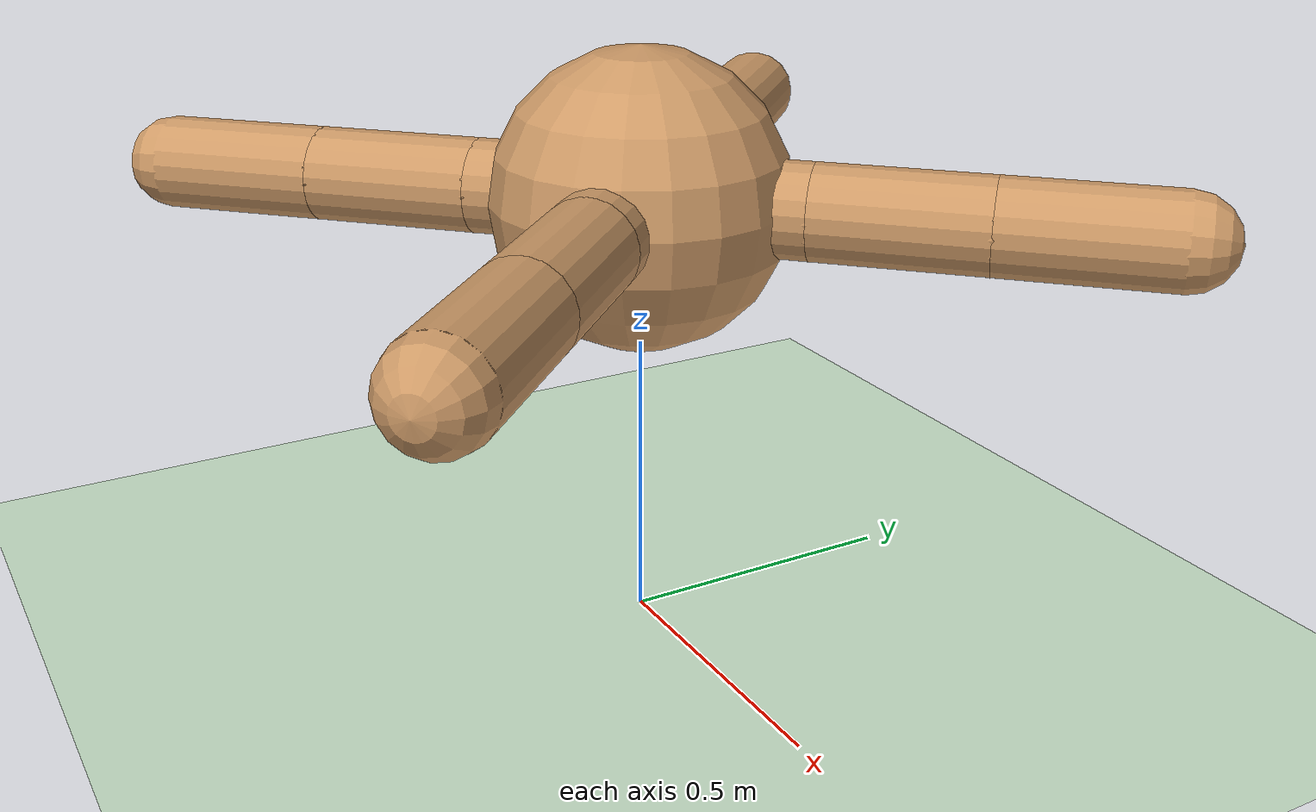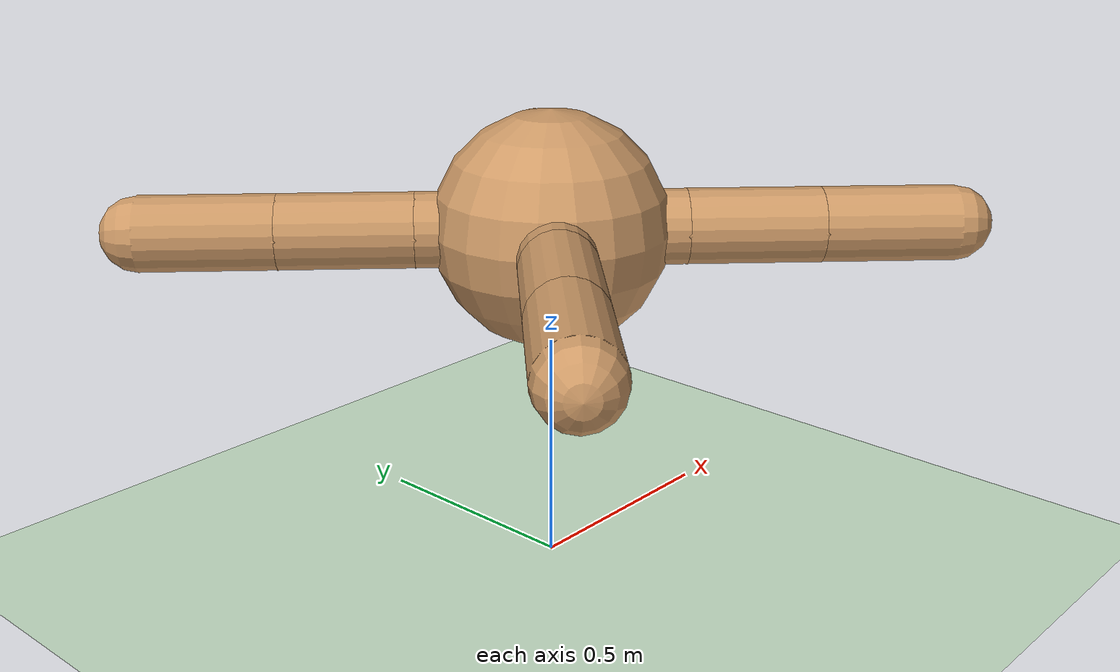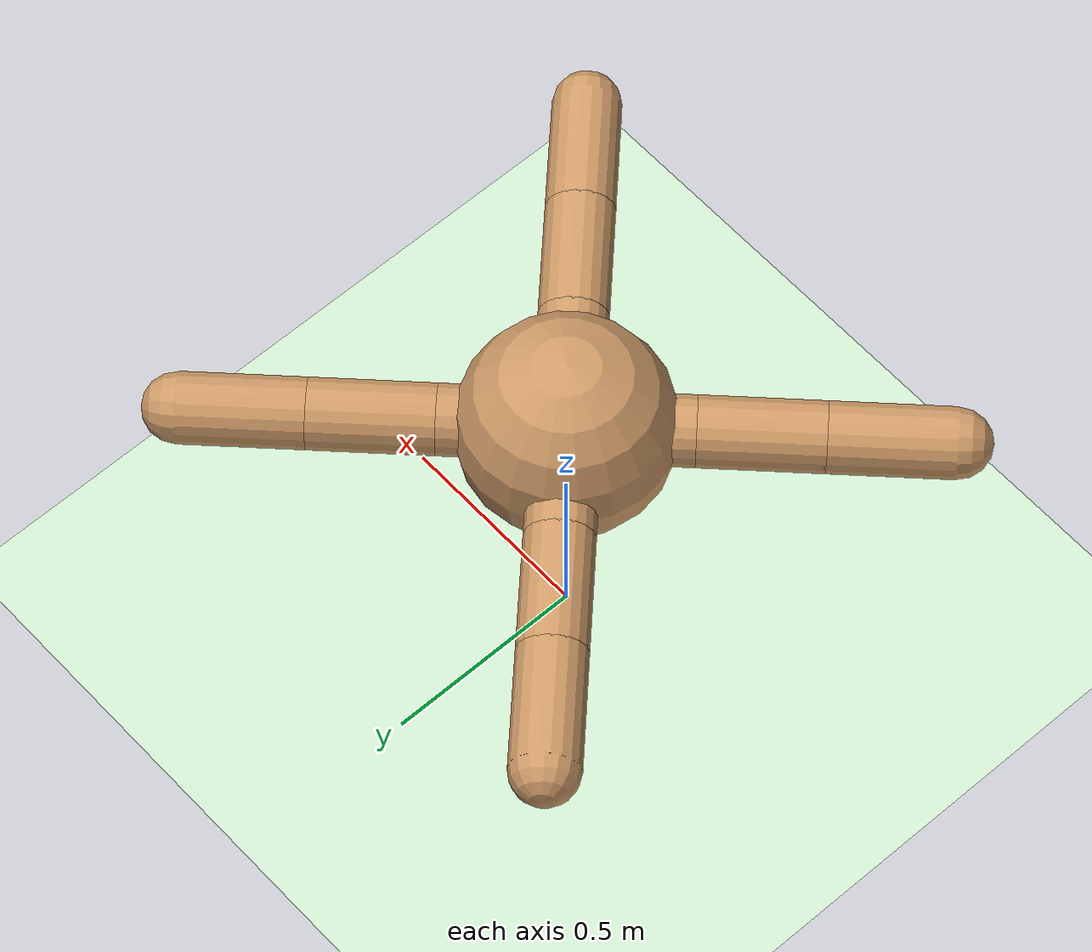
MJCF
<mujoco model="ant">
  <compiler angle="radian" autolimits="true"/>
  <option timestep="0.01" integrator="RK4"/>
  <default class="main">
    <joint limited="true" armature="1" damping="1"/>
    <geom conaffinity="0" friction="1 0.5 0.5" margin="0.01" density="5" rgba="0.8 0.6 0.4 1"/>
  </default>
  <custom>
    <numeric name="init_qpos" size="15" data="0 0 0.55 1 0 0 0 0 1 0 -1 0 -1 0 1"/>
  </custom>
  <asset>
    <texture type="skybox" builtin="gradient" rgb1="1 1 1" rgb2="0 0 0" width="100" height="600"/>
    <texture type="cube" name="texgeom" builtin="flat" mark="cross" rgb1="0.8 0.6 0.4" rgb2="0.8 0.6 0.4" markrgb="1 1 1" width="127" height="762"/>
    <texture type="2d" name="texplane" builtin="checker" rgb1="0 0 0" rgb2="0.8 0.8 0.8" width="100" height="100"/>
    <material name="MatPlane" texture="texplane" texrepeat="60 60" specular="1" shininess="1" reflectance="0.5"/>
    <material name="geom" texture="texgeom" texuniform="true"/>
  </asset>
  <worldbody>
    <geom name="floor" size="40 40 40" type="plane" conaffinity="1" material="MatPlane" rgba="0.8 0.9 0.8 1"/>
    <light pos="0 0 1.3" dir="0 0 -1" directional="true" cutoff="100" exponent="1" diffuse="1 1 1" specular="0.1 0.1 0.1"/>
    <body name="torso" pos="0 0 0.75" gravcomp="0">
      <joint name="root" limited="false" type="free" margin="0.01" armature="0" damping="0"/>
      <geom name="torso_geom" size="0.25"/>
      <camera name="track" pos="0 -3 0.3" quat="0.707107 0.707107 0 0" mode="trackcom"/>
      <body name="front_left_leg" pos="0 0 0" gravcomp="0">
        <geom name="aux_1_geom" size="0.08 0.141421" pos="0.1 0.1 0" quat="0.707107 0.5 -0.5 0" type="capsule"/>
        <body name="aux_1" pos="0.2 0.2 0" gravcomp="0">
          <joint name="hip_1" pos="0 0 0" axis="0 0 1" range="-0.523599 0.523599"/>
          <geom name="left_leg_geom" size="0.08 0.141421" pos="0.1 0.1 0" quat="0.707107 0.5 -0.5 0" type="capsule"/>
          <body pos="0.2 0.2 0" gravcomp="0">
            <joint name="ankle_1" pos="0 0 0" axis="-0.707107 0.707107 0" range="0.523599 1.22173"/>
            <geom name="left_ankle_geom" size="0.08 0.141421" pos="0.1 0.1 0" quat="0.707107 0.5 -0.5 0" type="capsule"/>
          </body>
        </body>
      </body>
      <body name="front_right_leg" pos="0 0 0" gravcomp="0">
        <geom name="aux_2_geom" size="0.08 0.141421" pos="-0.1 0.1 0" quat="0.707107 0.5 0.5 0" type="capsule"/>
        <body name="aux_2" pos="-0.2 0.2 0" gravcomp="0">
          <joint name="hip_2" pos="0 0 0" axis="0 0 1" range="-0.523599 0.523599"/>
          <geom name="right_leg_geom" size="0.08 0.141421" pos="-0.1 0.1 0" quat="0.707107 0.5 0.5 0" type="capsule"/>
          <body pos="-0.2 0.2 0" gravcomp="0">
            <joint name="ankle_2" pos="0 0 0" axis="0.707107 0.707107 0" range="-1.22173 -0.523599"/>
            <geom name="right_ankle_geom" size="0.08 0.141421" pos="-0.1 0.1 0" quat="0.707107 0.5 0.5 0" type="capsule"/>
          </body>
        </body>
      </body>
      <body name="back_leg" pos="0 0 0" gravcomp="0">
        <geom name="aux_3_geom" size="0.08 0.141421" pos="-0.1 -0.1 0" quat="0.707107 -0.5 0.5 0" type="capsule"/>
        <body name="aux_3" pos="-0.2 -0.2 0" gravcomp="0">
          <joint name="hip_3" pos="0 0 0" axis="0 0 1" range="-0.523599 0.523599"/>
          <geom name="back_leg_geom" size="0.08 0.141421" pos="-0.1 -0.1 0" quat="0.707107 -0.5 0.5 0" type="capsule"/>
          <body pos="-0.2 -0.2 0" gravcomp="0">
            <joint name="ankle_3" pos="0 0 0" axis="-0.707107 0.707107 0" range="-1.22173 -0.523599"/>
            <geom name="third_ankle_geom" size="0.08 0.141421" pos="-0.1 -0.1 0" quat="0.707107 -0.5 0.5 0" type="capsule"/>
          </body>
        </body>
      </body>
      <body name="right_back_leg" pos="0 0 0" gravcomp="0">
        <geom name="aux_4_geom" size="0.08 0.141421" pos="0.1 -0.1 0" quat="0.707107 -0.5 -0.5 0" type="capsule"/>
        <body name="aux_4" pos="0.2 -0.2 0" gravcomp="0">
          <joint name="hip_4" pos="0 0 0" axis="0 0 1" range="-0.523599 0.523599"/>
          <geom name="rightback_leg_geom" size="0.08 0.141421" pos="0.1 -0.1 0" quat="0.707107 -0.5 -0.5 0" type="capsule"/>
          <body pos="0.2 -0.2 0" gravcomp="0">
            <joint name="ankle_4" pos="0 0 0" axis="0.707107 0.707107 0" range="0.523599 1.22173"/>
            <geom name="fourth_ankle_geom" size="0.08 0.141421" pos="0.1 -0.1 0" quat="0.707107 -0.5 -0.5 0" type="capsule"/>
          </body>
        </body>
      </body>
    </body>
  </worldbody>
  <actuator>
    <general joint="hip_4" ctrlrange="-1 1" gear="150 0 0 0 0 0" actdim="0"/>
    <general joint="ankle_4" ctrlrange="-1 1" gear="150 0 0 0 0 0" actdim="0"/>
    <general joint="hip_1" ctrlrange="-1 1" gear="150 0 0 0 0 0" actdim="0"/>
    <general joint="ankle_1" ctrlrange="-1 1" gear="150 0 0 0 0 0" actdim="0"/>
    <general joint="hip_2" ctrlrange="-1 1" gear="150 0 0 0 0 0" actdim="0"/>
    <general joint="ankle_2" ctrlrange="-1 1" gear="150 0 0 0 0 0" actdim="0"/>
    <general joint="hip_3" ctrlrange="-1 1" gear="150 0 0 0 0 0" actdim="0"/>
    <general joint="ankle_3" ctrlrange="-1 1" gear="150 0 0 0 0 0" actdim="0"/>
  </actuator>
</mujoco>
